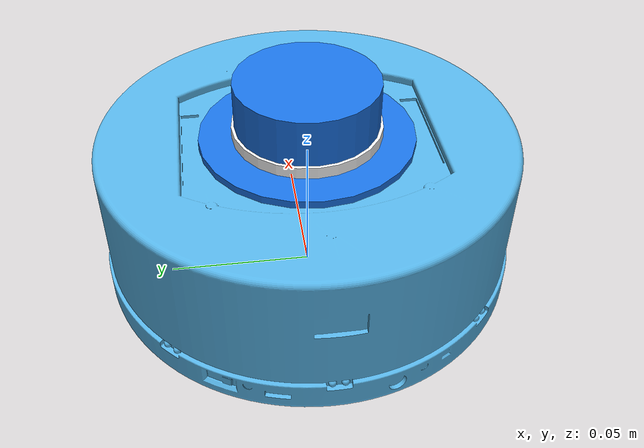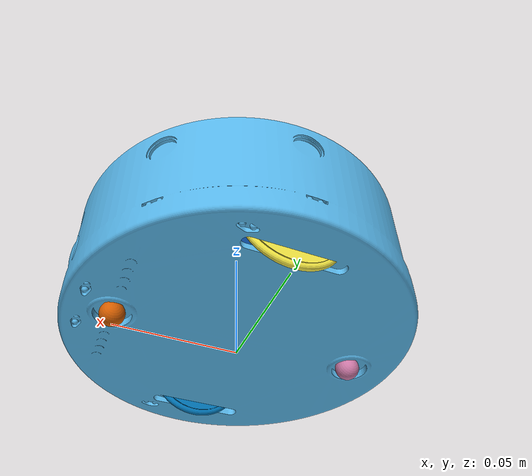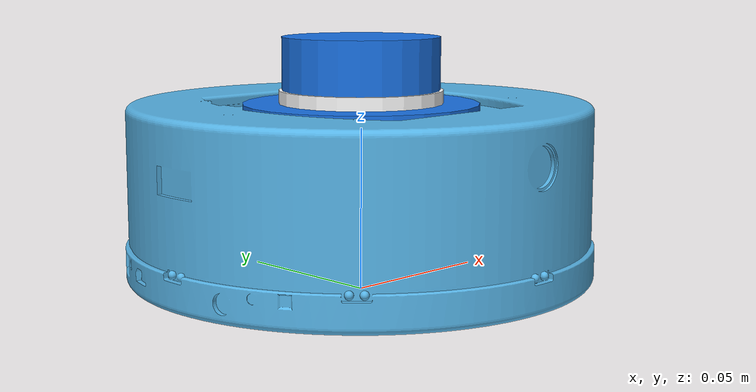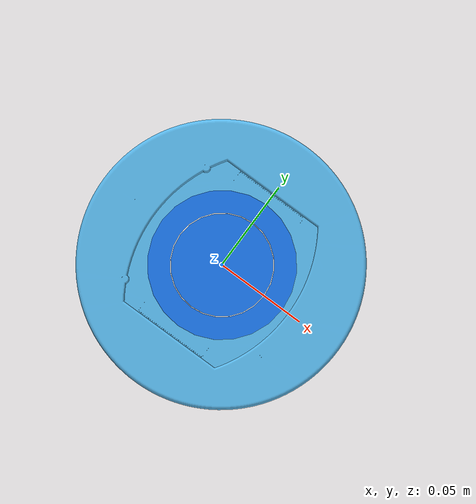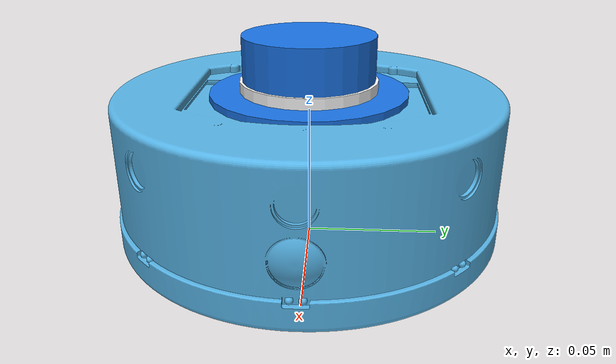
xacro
<?xml version="1.0"?>
<robot name="khepera4" xmlns:xacro="http://ros.org/wiki/xacro">

  <!-- Arguments for Multi-Robot & Modular Parametrization                  -->
  <xacro:arg name="robot_name" default="khepera4"/>
  <xacro:arg name="role" default="base_link"/>
  <xacro:arg name="color_rgb" default="0.10 0.45 0.90"/>
  <xacro:arg name="badge_label" default="BASE"/>

  <!-- Base Footprint: Projected 2D ground contact frame (Z = 0)             -->
  <link name="base_footprint"/>

  <!-- Base Link: Cylindrical Chassis with Blue Bumper & White Upper Shell   -->
  <!-- Dimensions: D = 140 mm, Body Height = 53.8 mm, Clearance = 4.5 mm    -->
  <link name="base_link">
    <inertial>
      <origin xyz="0 0 0.025" rpy="0 0 0"/>
      <mass value="0.460"/>
      <!-- Solid cylinder inertia: Izz = 0.5*m*r^2, Ixx = Iyy = (1/12)*m*(3r^2 + h^2) -->
      <inertia ixx="0.000693" ixy="0" ixz="0" iyy="0.000693" iyz="0" izz="0.001127"/>
    </inertial>
    <visual>
      <origin xyz="0 0 0" rpy="0 0 0"/>
      <geometry>
        <mesh filename="package://khepera4_description/meshes/khepera4_chassis.obj" scale="1.0 1.0 1.0"/>
      </geometry>
    </visual>
    <!-- Two-tier collision geometry: elevated upper bumper and recessed lower underbody -->
    <!-- Upper collision: full 70mm radius bumper against walls/obstacles, elevated bottom at z = 0.014m -->
    <collision>
      <origin xyz="0 0 0.036" rpy="0 0 0"/>
      <geometry>
        <cylinder radius="0.070" length="0.044"/>
      </geometry>
    </collision>
    <!-- Lower collision: recessed 50mm radius inside front caster (x = 50.5mm), bottom at z = 0.0045m -->
    <collision>
      <origin xyz="0 0 0.00925" rpy="0 0 0"/>
      <geometry>
        <cylinder radius="0.050" length="0.0095"/>
      </geometry>
    </collision>
  </link>

  <joint name="base_joint" type="fixed">
    <parent link="base_footprint"/>
    <child link="base_link"/>
    <origin xyz="0 0 0" rpy="0 0 0"/>
  </joint>

  <!-- Visual Identification Top Hat & Role Coordinate Frame                -->
  <!-- Unconditional top hat badge on all robots (Cobalt Blue, Orange, Green)-->
  <!-- Supports frames: khepera_1/base_link, khepera_2/extender, khepera_3/explorer -->
  <link name="top_hat">
    <inertial>
      <mass value="0.008"/>
      <origin xyz="0 0 0.012" rpy="0 0 0"/>
      <inertia ixx="0.000002" ixy="0" ixz="0" iyy="0.000002" iyz="0" izz="0.000003"/>
    </inertial>
    <!-- Hat Brim (Wide base) -->
    <visual name="hat_brim">
      <origin xyz="0 0 0.002" rpy="0 0 0"/>
      <geometry>
        <cylinder radius="0.036" length="0.004"/>
      </geometry>
      <material name="hat_mat_$(arg role)">
        <color rgba="$(arg color_rgb) 1.0"/>
      </material>
    </visual>
    <!-- Hat Crown (Tall cylindrical top) -->
    <visual name="hat_crown">
      <origin xyz="0 0 0.014" rpy="0 0 0"/>
      <geometry>
        <cylinder radius="0.024" length="0.020"/>
      </geometry>
      <material name="hat_mat_$(arg role)">
        <color rgba="$(arg color_rgb) 1.0"/>
      </material>
    </visual>
    <!-- Hat Band (White decorative ring around crown) -->
    <visual name="hat_band">
      <origin xyz="0 0 0.006" rpy="0 0 0"/>
      <geometry>
        <cylinder radius="0.025" length="0.004"/>
      </geometry>
      <material name="hat_band_mat">
        <color rgba="1.0 1.0 1.0 0.95"/>
      </material>
    </visual>
  </link>

  <joint name="top_hat_joint" type="fixed">
    <parent link="base_link"/>
    <child link="top_hat"/>
    <origin xyz="0 0 0.0538" rpy="0 0 0"/>
  </joint>

  <gazebo reference="top_hat">
    <visual>
      <material>
        <ambient>$(arg color_rgb) 1.0</ambient>
        <diffuse>$(arg color_rgb) 1.0</diffuse>
        <specular>0.8 0.8 0.8 1.0</specular>
        <emissive>$(arg color_rgb) 0.6</emissive>
      </material>
    </visual>
  </gazebo>

  <xacro:property name="role_val" value="$(arg role)"/>
  <xacro:if value="${role_val != 'base_link'}">
    <link name="$(arg role)"/>
    <joint name="$(arg role)_joint" type="fixed">
      <parent link="top_hat"/>
      <child link="$(arg role)"/>
      <origin xyz="0 0 0.024" rpy="0 0 0"/>
    </joint>
  </xacro:if>

  <!-- Left Wheel (r = 0.021m, track gauge L = 0.1054m -> Y = +0.0527m)     -->
  <link name="left_wheel">
    <inertial>
      <origin xyz="0 0 0" rpy="1.570796 0 0"/>
      <mass value="0.035"/>
      <inertia ixx="0.0000039" ixy="0" ixz="0" iyy="0.0000039" iyz="0" izz="0.0000077"/>
    </inertial>
    <visual>
      <origin xyz="0 0 0" rpy="0 0 0"/>
      <geometry>
        <mesh filename="package://khepera4_description/meshes/khepera4_wheel.obj" scale="1.0 1.0 1.0"/>
      </geometry>
    </visual>
    <collision>
      <origin xyz="0 0 0" rpy="1.57079632679 0 0"/>
      <geometry>
        <cylinder radius="0.021" length="0.004"/>
      </geometry>
    </collision>
  </link>

  <joint name="left_wheel_joint" type="continuous">
    <parent link="base_link"/>
    <child link="left_wheel"/>
    <origin xyz="0 0.0527 0.021" rpy="0 0 0"/>
    <axis xyz="0 1 0"/>
  </joint>

  <!-- Right Wheel (r = 0.021m, track gauge L = 0.1054m -> Y = -0.0527m)    -->
  <link name="right_wheel">
    <inertial>
      <origin xyz="0 0 0" rpy="1.570796 0 0"/>
      <mass value="0.035"/>
      <inertia ixx="0.0000039" ixy="0" ixz="0" iyy="0.0000039" iyz="0" izz="0.0000077"/>
    </inertial>
    <visual>
      <origin xyz="0 0 0" rpy="0 0 0"/>
      <geometry>
        <mesh filename="package://khepera4_description/meshes/khepera4_wheel.obj" scale="1.0 1.0 1.0"/>
      </geometry>
    </visual>
    <collision>
      <origin xyz="0 0 0" rpy="1.57079632679 0 0"/>
      <geometry>
        <cylinder radius="0.021" length="0.004"/>
      </geometry>
    </collision>
  </link>

  <joint name="right_wheel_joint" type="continuous">
    <parent link="base_link"/>
    <child link="right_wheel"/>
    <origin xyz="0 -0.0527 0.021" rpy="0 0 0"/>
    <axis xyz="0 1 0"/>
  </joint>

  <!-- Passive Chrome Ball Casters (Front & Rear Support Spheres)           -->
  <link name="front_caster">
    <inertial>
      <mass value="0.005"/>
      <inertia ixx="0.0000001" ixy="0" ixz="0" iyy="0.0000001" iyz="0" izz="0.0000001"/>
    </inertial>
    <visual>
      <origin xyz="0 0 0" rpy="0 0 0"/>
      <geometry>
        <mesh filename="package://khepera4_description/meshes/khepera4_caster.obj" scale="1.0 1.0 1.0"/>
      </geometry>
    </visual>
    <collision>
      <origin xyz="0 0 0" rpy="0 0 0"/>
      <geometry>
        <sphere radius="0.005"/>
      </geometry>
    </collision>
  </link>

  <joint name="front_caster_joint" type="fixed">
    <parent link="base_link"/>
    <child link="front_caster"/>
    <origin xyz="0.0505 0 0.005" rpy="0 0 0"/>
  </joint>

  <link name="rear_caster">
    <inertial>
      <mass value="0.005"/>
      <inertia ixx="0.0000001" ixy="0" ixz="0" iyy="0.0000001" iyz="0" izz="0.0000001"/>
    </inertial>
    <visual>
      <origin xyz="0 0 0" rpy="0 0 0"/>
      <geometry>
        <mesh filename="package://khepera4_description/meshes/khepera4_caster.obj" scale="1.0 1.0 1.0"/>
      </geometry>
    </visual>
    <collision>
      <origin xyz="0 0 0" rpy="0 0 0"/>
      <geometry>
        <sphere radius="0.005"/>
      </geometry>
    </collision>
  </link>

  <joint name="rear_caster_joint" type="fixed">
    <parent link="base_link"/>
    <child link="rear_caster"/>
    <origin xyz="-0.0505 0 0.005" rpy="0 0 0"/>
  </joint>

  <!-- Sensors: CMOS Color Camera (Front WVGA 640x480, 60 deg HFOV)         -->
  <link name="camera_link"/>
  <joint name="camera_joint" type="fixed">
    <parent link="base_link"/>
    <child link="camera_link"/>
    <origin xyz="0.0682 0 0.0283" rpy="0 0 0"/>
  </joint>

  <link name="camera_optical_frame"/>
  <joint name="camera_optical_joint" type="fixed">
    <parent link="camera_link"/>
    <child link="camera_optical_frame"/>
    <origin xyz="0 0 0" rpy="-1.570796 0 -1.570796"/>
  </joint>

  <!-- Sensors: 6-DOF IMU Sensor (Accelerometer + Gyroscope)                -->
  <link name="imu_link"/>
  <joint name="imu_joint" type="fixed">
    <parent link="base_link"/>
    <child link="imu_link"/>
    <origin xyz="0 0 0.021" rpy="0 0 0"/>
  </joint>

  <!-- Ultrasonic Distance Sensor Frames (5 Sonar Transducers at Z = 45mm)  -->
  <link name="us_0_link"/><joint name="us_0_joint" type="fixed"><parent link="base_link"/><child link="us_0_link"/><origin xyz="0 0.070 0.0458" rpy="0 0 1.570796"/></joint>
  <link name="us_1_link"/><joint name="us_1_joint" type="fixed"><parent link="base_link"/><child link="us_1_link"/><origin xyz="0.0448 0.0454 0.0458" rpy="0 0 0.785398"/></joint>
  <link name="us_2_link"/><joint name="us_2_joint" type="fixed"><parent link="base_link"/><child link="us_2_link"/><origin xyz="0.0636 0 0.0458" rpy="0 0 0"/></joint>
  <link name="us_3_link"/><joint name="us_3_joint" type="fixed"><parent link="base_link"/><child link="us_3_link"/><origin xyz="0.0449 -0.0454 0.0458" rpy="0 0 -0.785398"/></joint>
  <link name="us_4_link"/><joint name="us_4_joint" type="fixed"><parent link="base_link"/><child link="us_4_link"/><origin xyz="0 -0.070 0.0458" rpy="0 0 -1.570796"/></joint>

  <!-- Infrared Ring Sensor Frames (8 Proximity Sensors in Blue Bumper)     -->
  <link name="ir_0_link"/><joint name="ir_0_joint" type="fixed"><parent link="base_link"/><child link="ir_0_link"/><origin xyz="0.069 0.012 0.014" rpy="0 0 0.174"/></joint>
  <link name="ir_1_link"/><joint name="ir_1_joint" type="fixed"><parent link="base_link"/><child link="ir_1_link"/><origin xyz="0.049 0.049 0.014" rpy="0 0 0.785"/></joint>
  <link name="ir_2_link"/><joint name="ir_2_joint" type="fixed"><parent link="base_link"/><child link="ir_2_link"/><origin xyz="0 0.070 0.014" rpy="0 0 1.571"/></joint>
  <link name="ir_3_link"/><joint name="ir_3_joint" type="fixed"><parent link="base_link"/><child link="ir_3_link"/><origin xyz="-0.049 0.049 0.014" rpy="0 0 2.356"/></joint>
  <link name="ir_4_link"/><joint name="ir_4_joint" type="fixed"><parent link="base_link"/><child link="ir_4_link"/><origin xyz="-0.049 -0.049 0.014" rpy="0 0 -2.356"/></joint>
  <link name="ir_5_link"/><joint name="ir_5_joint" type="fixed"><parent link="base_link"/><child link="ir_5_link"/><origin xyz="0 -0.070 0.014" rpy="0 0 -1.571"/></joint>
  <link name="ir_6_link"/><joint name="ir_6_joint" type="fixed"><parent link="base_link"/><child link="ir_6_link"/><origin xyz="0.049 -0.049 0.014" rpy="0 0 -0.785"/></joint>
  <link name="ir_7_link"/><joint name="ir_7_joint" type="fixed"><parent link="base_link"/><child link="ir_7_link"/><origin xyz="0.069 -0.012 0.014" rpy="0 0 -0.174"/></joint>

  <!-- Underbody Ground Sensor Frames (4 Cliff/Line Sensors Facing Down)    -->
  <link name="ground_ir_0_link"/><joint name="ground_ir_0_joint" type="fixed"><parent link="base_link"/><child link="ground_ir_0_link"/><origin xyz="0.061 0.020 0.005" rpy="0 1.570796 0"/></joint>
  <link name="ground_ir_1_link"/><joint name="ground_ir_1_joint" type="fixed"><parent link="base_link"/><child link="ground_ir_1_link"/><origin xyz="0.064 0.009 0.005" rpy="0 1.570796 0"/></joint>
  <link name="ground_ir_2_link"/><joint name="ground_ir_2_joint" type="fixed"><parent link="base_link"/><child link="ground_ir_2_link"/><origin xyz="0.064 -0.009 0.005" rpy="0 1.570796 0"/></joint>
  <link name="ground_ir_3_link"/><joint name="ground_ir_3_joint" type="fixed"><parent link="base_link"/><child link="ground_ir_3_link"/><origin xyz="0.061 -0.020 0.005" rpy="0 1.570796 0"/></joint>

  <!-- Gazebo Physics & Friction Parameters                                 -->
  <gazebo reference="front_caster">
    <mu1>0.0001</mu1>
    <mu2>0.0001</mu2>
    <kp>1000000.0</kp>
    <kd>1.0</kd>
    <minDepth>0.0005</minDepth>
    <maxVel>0.1</maxVel>
  </gazebo>
  <gazebo reference="rear_caster">
    <mu1>0.0001</mu1>
    <mu2>0.0001</mu2>
    <kp>1000000.0</kp>
    <kd>1.0</kd>
    <minDepth>0.0005</minDepth>
    <maxVel>0.1</maxVel>
  </gazebo>
  <gazebo reference="base_link">
    <mu1>0.2</mu1>
    <mu2>0.2</mu2>
  </gazebo>
  <gazebo reference="left_wheel">
    <mu1>1.0</mu1>
    <mu2>1.0</mu2>
  </gazebo>
  <gazebo reference="right_wheel">
    <mu1>1.0</mu1>
    <mu2>1.0</mu2>
  </gazebo>

  <!-- Gazebo Sensor Systems (Camera & IMU)                                 -->
  <gazebo reference="camera_link">
    <sensor name="$(arg robot_name)_camera" type="camera">
      <always_on>1</always_on>
      <update_rate>30</update_rate>
      <camera>
        <horizontal_fov>1.047198</horizontal_fov>
        <image>
          <width>640</width>
          <height>480</height>
          <format>R8G8B8</format>
        </image>
        <clip>
          <near>0.05</near>
          <far>10.0</far>
        </clip>
        <optical_frame_id>camera_optical_frame</optical_frame_id>
      </camera>
      <topic>/$(arg robot_name)/camera/image_raw</topic>
    </sensor>
  </gazebo>

  <gazebo reference="imu_link">
    <sensor name="$(arg robot_name)_imu" type="imu">
      <always_on>1</always_on>
      <update_rate>100</update_rate>
      <topic>/$(arg robot_name)/imu/data</topic>
    </sensor>
  </gazebo>

  <!-- Gazebo Sensor Systems (5 Ultrasonic Transducers: 0.25m - 2.0m)       -->
  <gazebo reference="us_0_link">
    <sensor name="$(arg robot_name)_us_0" type="gpu_lidar">
      <always_on>1</always_on><update_rate>10</update_rate>
      <topic>/$(arg robot_name)/us_0/scan</topic>
      <ray>
        <scan><horizontal><samples>5</samples><resolution>1</resolution><min_angle>-0.2618</min_angle><max_angle>0.2618</max_angle></horizontal></scan>
        <range><min>0.02</min><max>2.00</max><resolution>0.005</resolution></range>
      </ray>
    </sensor>
  </gazebo>

  <gazebo reference="us_1_link">
    <sensor name="$(arg robot_name)_us_1" type="gpu_lidar">
      <always_on>1</always_on><update_rate>10</update_rate>
      <topic>/$(arg robot_name)/us_1/scan</topic>
      <ray>
        <scan><horizontal><samples>5</samples><resolution>1</resolution><min_angle>-0.2618</min_angle><max_angle>0.2618</max_angle></horizontal></scan>
        <range><min>0.02</min><max>2.00</max><resolution>0.005</resolution></range>
      </ray>
    </sensor>
  </gazebo>

  <gazebo reference="us_2_link">
    <sensor name="$(arg robot_name)_us_2" type="gpu_lidar">
      <always_on>1</always_on><update_rate>10</update_rate>
      <topic>/$(arg robot_name)/us_2/scan</topic>
      <ray>
        <scan><horizontal><samples>5</samples><resolution>1</resolution><min_angle>-0.2618</min_angle><max_angle>0.2618</max_angle></horizontal></scan>
        <range><min>0.02</min><max>2.00</max><resolution>0.005</resolution></range>
      </ray>
    </sensor>
  </gazebo>

  <gazebo reference="us_3_link">
    <sensor name="$(arg robot_name)_us_3" type="gpu_lidar">
      <always_on>1</always_on><update_rate>10</update_rate>
      <topic>/$(arg robot_name)/us_3/scan</topic>
      <ray>
        <scan><horizontal><samples>5</samples><resolution>1</resolution><min_angle>-0.2618</min_angle><max_angle>0.2618</max_angle></horizontal></scan>
        <range><min>0.02</min><max>2.00</max><resolution>0.005</resolution></range>
      </ray>
    </sensor>
  </gazebo>

  <gazebo reference="us_4_link">
    <sensor name="$(arg robot_name)_us_4" type="gpu_lidar">
      <always_on>1</always_on><update_rate>10</update_rate>
      <topic>/$(arg robot_name)/us_4/scan</topic>
      <ray>
        <scan><horizontal><samples>5</samples><resolution>1</resolution><min_angle>-0.2618</min_angle><max_angle>0.2618</max_angle></horizontal></scan>
        <range><min>0.02</min><max>2.00</max><resolution>0.005</resolution></range>
      </ray>
    </sensor>
  </gazebo>

  <!-- Gazebo Sensor Systems (8 IR Proximity Transducers: 0.002m - 0.25m)   -->
  <gazebo reference="ir_0_link">
    <sensor name="$(arg robot_name)_ir_0" type="gpu_lidar">
      <always_on>1</always_on><update_rate>20</update_rate>
      <topic>/$(arg robot_name)/ir_0/scan</topic>
      <ray>
        <scan><horizontal><samples>3</samples><resolution>1</resolution><min_angle>-0.1309</min_angle><max_angle>0.1309</max_angle></horizontal></scan>
        <range><min>0.002</min><max>0.25</max><resolution>0.001</resolution></range>
      </ray>
    </sensor>
  </gazebo>

  <gazebo reference="ir_1_link">
    <sensor name="$(arg robot_name)_ir_1" type="gpu_lidar">
      <always_on>1</always_on><update_rate>20</update_rate>
      <topic>/$(arg robot_name)/ir_1/scan</topic>
      <ray>
        <scan><horizontal><samples>3</samples><resolution>1</resolution><min_angle>-0.1309</min_angle><max_angle>0.1309</max_angle></horizontal></scan>
        <range><min>0.002</min><max>0.25</max><resolution>0.001</resolution></range>
      </ray>
    </sensor>
  </gazebo>

  <gazebo reference="ir_2_link">
    <sensor name="$(arg robot_name)_ir_2" type="gpu_lidar">
      <always_on>1</always_on><update_rate>20</update_rate>
      <topic>/$(arg robot_name)/ir_2/scan</topic>
      <ray>
        <scan><horizontal><samples>3</samples><resolution>1</resolution><min_angle>-0.1309</min_angle><max_angle>0.1309</max_angle></horizontal></scan>
        <range><min>0.002</min><max>0.25</max><resolution>0.001</resolution></range>
      </ray>
    </sensor>
  </gazebo>

  <gazebo reference="ir_3_link">
    <sensor name="$(arg robot_name)_ir_3" type="gpu_lidar">
      <always_on>1</always_on><update_rate>20</update_rate>
      <topic>/$(arg robot_name)/ir_3/scan</topic>
      <ray>
        <scan><horizontal><samples>3</samples><resolution>1</resolution><min_angle>-0.1309</min_angle><max_angle>0.1309</max_angle></horizontal></scan>
        <range><min>0.002</min><max>0.25</max><resolution>0.001</resolution></range>
      </ray>
    </sensor>
  </gazebo>

  <gazebo reference="ir_4_link">
    <sensor name="$(arg robot_name)_ir_4" type="gpu_lidar">
      <always_on>1</always_on><update_rate>20</update_rate>
      <topic>/$(arg robot_name)/ir_4/scan</topic>
      <ray>
        <scan><horizontal><samples>3</samples><resolution>1</resolution><min_angle>-0.1309</min_angle><max_angle>0.1309</max_angle></horizontal></scan>
        <range><min>0.002</min><max>0.25</max><resolution>0.001</resolution></range>
      </ray>
    </sensor>
  </gazebo>

  <gazebo reference="ir_5_link">
    <sensor name="$(arg robot_name)_ir_5" type="gpu_lidar">
      <always_on>1</always_on><update_rate>20</update_rate>
      <topic>/$(arg robot_name)/ir_5/scan</topic>
      <ray>
        <scan><horizontal><samples>3</samples><resolution>1</resolution><min_angle>-0.1309</min_angle><max_angle>0.1309</max_angle></horizontal></scan>
        <range><min>0.002</min><max>0.25</max><resolution>0.001</resolution></range>
      </ray>
    </sensor>
  </gazebo>

  <gazebo reference="ir_6_link">
    <sensor name="$(arg robot_name)_ir_6" type="gpu_lidar">
      <always_on>1</always_on><update_rate>20</update_rate>
      <topic>/$(arg robot_name)/ir_6/scan</topic>
      <ray>
        <scan><horizontal><samples>3</samples><resolution>1</resolution><min_angle>-0.1309</min_angle><max_angle>0.1309</max_angle></horizontal></scan>
        <range><min>0.002</min><max>0.25</max><resolution>0.001</resolution></range>
      </ray>
    </sensor>
  </gazebo>

  <gazebo reference="ir_7_link">
    <sensor name="$(arg robot_name)_ir_7" type="gpu_lidar">
      <always_on>1</always_on><update_rate>20</update_rate>
      <topic>/$(arg robot_name)/ir_7/scan</topic>
      <ray>
        <scan><horizontal><samples>3</samples><resolution>1</resolution><min_angle>-0.1309</min_angle><max_angle>0.1309</max_angle></horizontal></scan>
        <range><min>0.002</min><max>0.25</max><resolution>0.001</resolution></range>
      </ray>
    </sensor>
  </gazebo>

  <!-- Gazebo Sensor Systems (4 Ground IR Sensors: Cliff / Surface)        -->
  <gazebo reference="ground_ir_0_link">
    <sensor name="$(arg robot_name)_ground_ir_0" type="gpu_lidar">
      <always_on>1</always_on><update_rate>20</update_rate>
      <topic>/$(arg robot_name)/ground_ir_0/scan</topic>
      <ray>
        <scan><horizontal><samples>1</samples><resolution>1</resolution><min_angle>0</min_angle><max_angle>0</max_angle></horizontal></scan>
        <range><min>0.001</min><max>0.06</max><resolution>0.0005</resolution></range>
      </ray>
    </sensor>
  </gazebo>

  <gazebo reference="ground_ir_1_link">
    <sensor name="$(arg robot_name)_ground_ir_1" type="gpu_lidar">
      <always_on>1</always_on><update_rate>20</update_rate>
      <topic>/$(arg robot_name)/ground_ir_1/scan</topic>
      <ray>
        <scan><horizontal><samples>1</samples><resolution>1</resolution><min_angle>0</min_angle><max_angle>0</max_angle></horizontal></scan>
        <range><min>0.001</min><max>0.06</max><resolution>0.0005</resolution></range>
      </ray>
    </sensor>
  </gazebo>

  <gazebo reference="ground_ir_2_link">
    <sensor name="$(arg robot_name)_ground_ir_2" type="gpu_lidar">
      <always_on>1</always_on><update_rate>20</update_rate>
      <topic>/$(arg robot_name)/ground_ir_2/scan</topic>
      <ray>
        <scan><horizontal><samples>1</samples><resolution>1</resolution><min_angle>0</min_angle><max_angle>0</max_angle></horizontal></scan>
        <range><min>0.001</min><max>0.06</max><resolution>0.0005</resolution></range>
      </ray>
    </sensor>
  </gazebo>

  <gazebo reference="ground_ir_3_link">
    <sensor name="$(arg robot_name)_ground_ir_3" type="gpu_lidar">
      <always_on>1</always_on><update_rate>20</update_rate>
      <topic>/$(arg robot_name)/ground_ir_3/scan</topic>
      <ray>
        <scan><horizontal><samples>1</samples><resolution>1</resolution><min_angle>0</min_angle><max_angle>0</max_angle></horizontal></scan>
        <range><min>0.001</min><max>0.06</max><resolution>0.0005</resolution></range>
      </ray>
    </sensor>
  </gazebo>

  <!-- Gazebo Harmonic Actuator & Telemetry Plugins                        -->
  <!-- Scoped per robot instance to prevent multi-robot topic collisions    -->
  <gazebo>
    <plugin filename="gz-sim-diff-drive-system" name="gz::sim::systems::DiffDrive">
      <left_joint>left_wheel_joint</left_joint>
      <right_joint>right_wheel_joint</right_joint>
      <wheel_separation>0.1054</wheel_separation>
      <wheel_radius>0.021</wheel_radius>
      <max_linear_acceleration>2.0</max_linear_acceleration>
      <min_linear_acceleration>-2.0</min_linear_acceleration>
      <max_angular_acceleration>4.0</max_angular_acceleration>
      <min_angular_acceleration>-4.0</min_angular_acceleration>
      <topic>/$(arg robot_name)/cmd_vel</topic>
      <odom_topic>/$(arg robot_name)/odom</odom_topic>
      <frame_id>$(arg robot_name)/odom</frame_id>
      <child_frame_id>$(arg robot_name)/base_footprint</child_frame_id>
      <odom_publisher_frequency>50</odom_publisher_frequency>
      <tf_topic>/tf</tf_topic>
    </plugin>

    <plugin filename="gz-sim-joint-state-publisher-system" name="gz::sim::systems::JointStatePublisher">
      <topic>/$(arg robot_name)/joint_states</topic>
    </plugin>
  </gazebo>

</robot>
